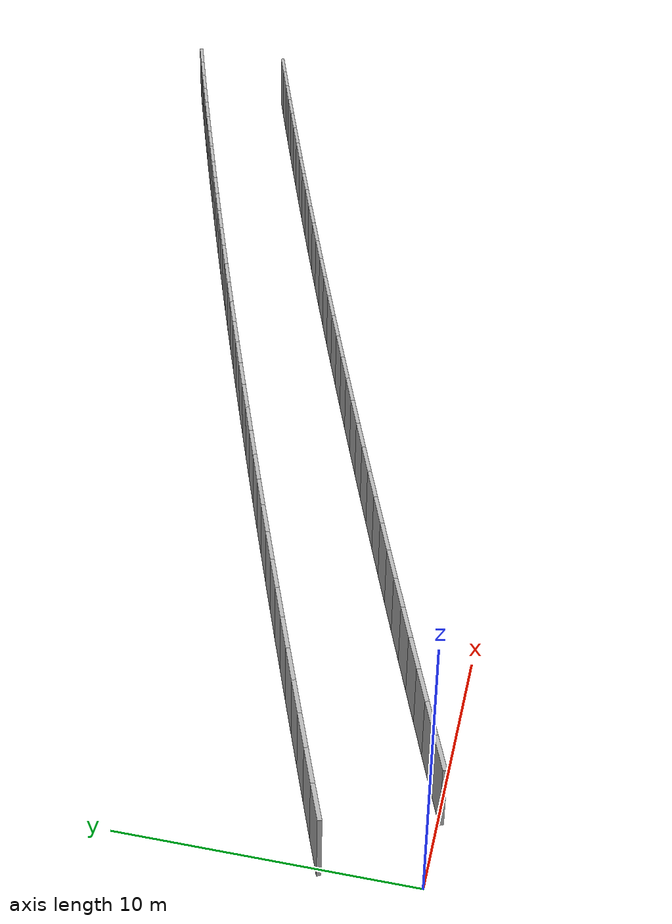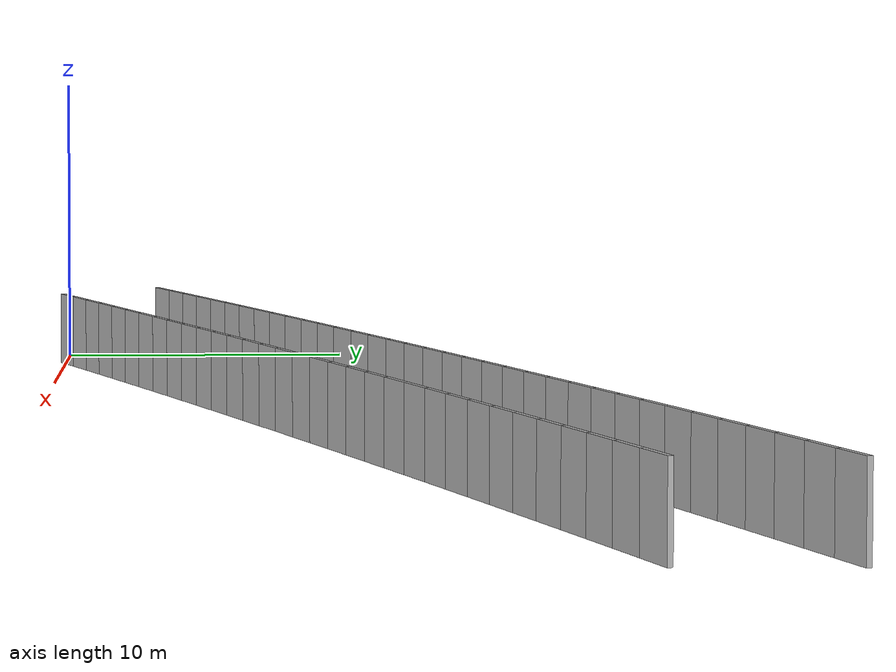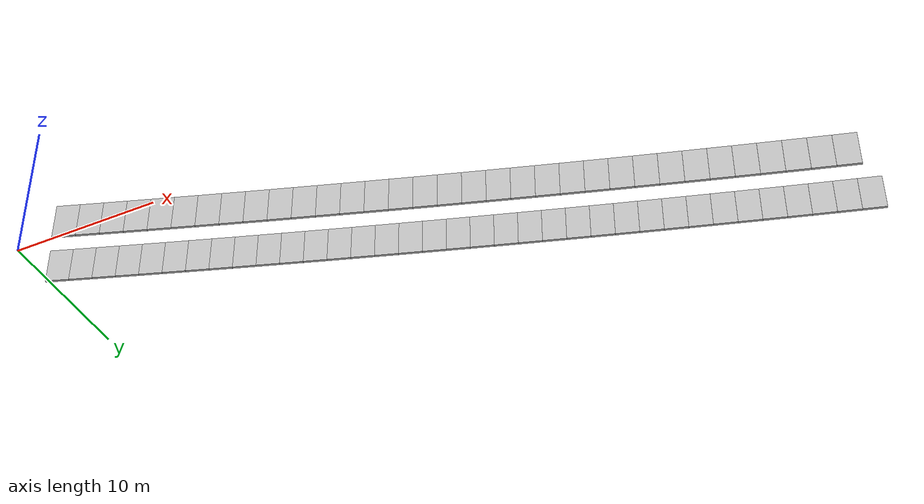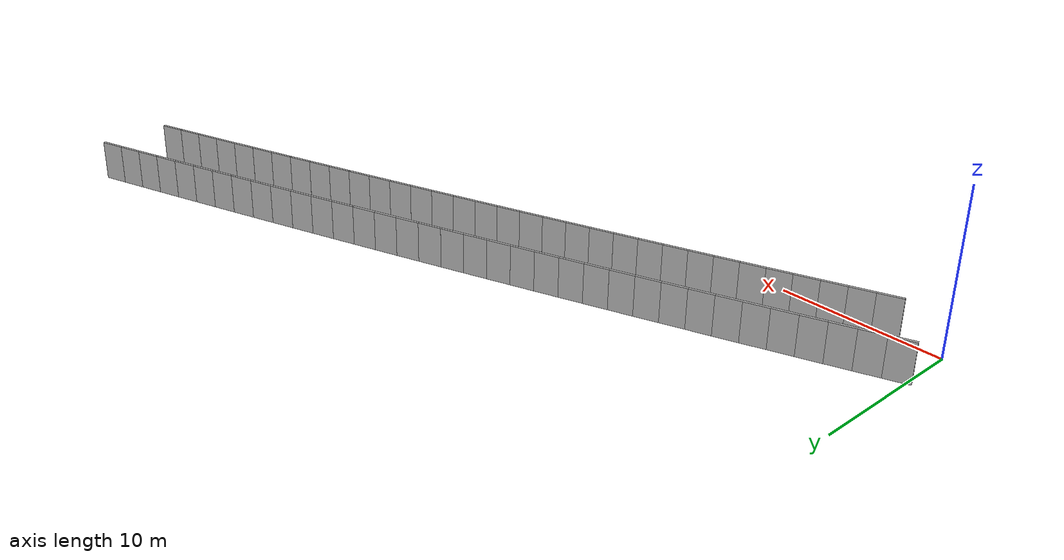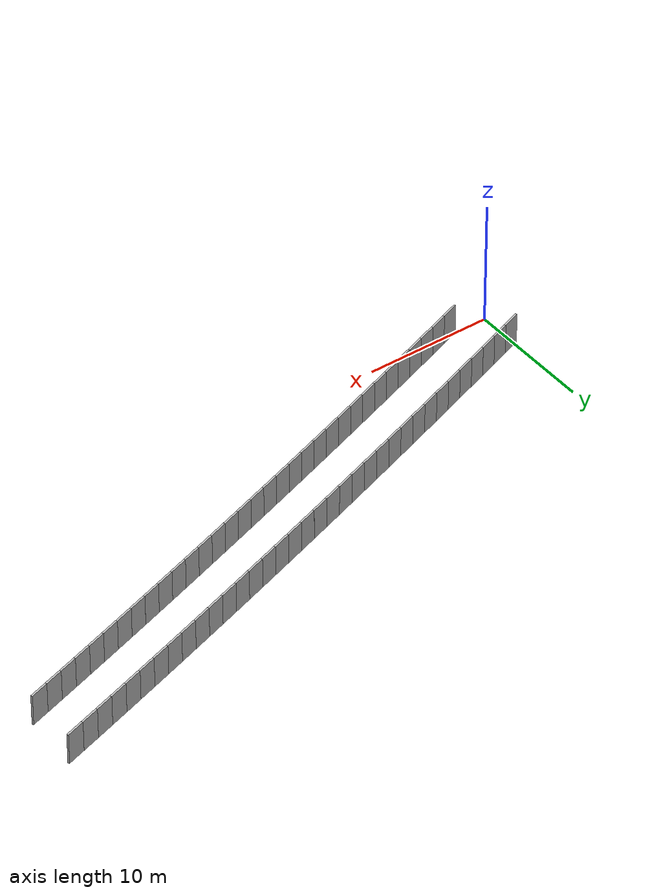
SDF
<?xml version="1.0" ?>
<sdf version="1.6">
  <model name="sps_1746">
    <pose frame="">0 0 0 0 -0 0</pose>
    <static>1</static>
    <self_collide>0</self_collide>
    <allow_auto_disable>0</allow_auto_disable>
    <link name="Wall3056">
      <kinematic>0</kinematic>
      <gravity>1</gravity>
      <self_collide>0</self_collide>
      <collision name="collision">
        <geometry>
          <box>
            <size>1.49633 0.15 2.5</size>
          </box>
        </geometry>
        <pose frame="">0 0 0 0 -0 0</pose>
      </collision>
      <visual name="visual">
        <geometry>
          <box>
            <size>1.49633 0.15 2.5</size>
          </box>
        </geometry>
        <pose frame="">0 0 0 0 -0 0</pose>
        <cast_shadows>1</cast_shadows>
        <transparency>0.0</transparency>
      </visual>
      <pose frame="">48.6327 15.6846 1.25 0 0 -2.83655</pose>
    </link>
    <link name="Wall3057">
      <kinematic>0</kinematic>
      <gravity>1</gravity>
      <self_collide>0</self_collide>
      <collision name="collision">
        <geometry>
          <box>
            <size>1.4966 0.15 2.5</size>
          </box>
        </geometry>
        <pose frame="">0 0 0 0 -0 0</pose>
      </collision>
      <visual name="visual">
        <geometry>
          <box>
            <size>1.4966 0.15 2.5</size>
          </box>
        </geometry>
        <pose frame="">0 0 0 0 -0 0</pose>
        <cast_shadows>1</cast_shadows>
        <transparency>0.0</transparency>
      </visual>
      <pose frame="">47.2056 15.234 1.25 0 0 -2.83489</pose>
    </link>
    <link name="Wall3058">
      <kinematic>0</kinematic>
      <gravity>1</gravity>
      <self_collide>0</self_collide>
      <collision name="collision">
        <geometry>
          <box>
            <size>1.4966 0.15 2.5</size>
          </box>
        </geometry>
        <pose frame="">0 0 0 0 -0 0</pose>
      </collision>
      <visual name="visual">
        <geometry>
          <box>
            <size>1.4966 0.15 2.5</size>
          </box>
        </geometry>
        <pose frame="">0 0 0 0 -0 0</pose>
        <cast_shadows>1</cast_shadows>
        <transparency>0.0</transparency>
      </visual>
      <pose frame="">45.7793 14.781 1.25 0 0 -2.83327</pose>
    </link>
    <link name="Wall3059">
      <kinematic>0</kinematic>
      <gravity>1</gravity>
      <self_collide>0</self_collide>
      <collision name="collision">
        <geometry>
          <box>
            <size>1.49642 0.15 2.5</size>
          </box>
        </geometry>
        <pose frame="">0 0 0 0 -0 0</pose>
      </collision>
      <visual name="visual">
        <geometry>
          <box>
            <size>1.49642 0.15 2.5</size>
          </box>
        </geometry>
        <pose frame="">0 0 0 0 -0 0</pose>
        <cast_shadows>1</cast_shadows>
        <transparency>0.0</transparency>
      </visual>
      <pose frame="">44.3537 14.3258 1.25 0 0 -2.83177</pose>
    </link>
    <link name="Wall3060">
      <kinematic>0</kinematic>
      <gravity>1</gravity>
      <self_collide>0</self_collide>
      <collision name="collision">
        <geometry>
          <box>
            <size>1.4966 0.15 2.5</size>
          </box>
        </geometry>
        <pose frame="">0 0 0 0 -0 0</pose>
      </collision>
      <visual name="visual">
        <geometry>
          <box>
            <size>1.4966 0.15 2.5</size>
          </box>
        </geometry>
        <pose frame="">0 0 0 0 -0 0</pose>
        <cast_shadows>1</cast_shadows>
        <transparency>0.0</transparency>
      </visual>
      <pose frame="">42.9288 13.8684 1.25 0 0 -2.83019</pose>
    </link>
    <link name="Wall3061">
      <kinematic>0</kinematic>
      <gravity>1</gravity>
      <self_collide>0</self_collide>
      <collision name="collision">
        <geometry>
          <box>
            <size>1.49654 0.15 2.5</size>
          </box>
        </geometry>
        <pose frame="">0 0 0 0 -0 0</pose>
      </collision>
      <visual name="visual">
        <geometry>
          <box>
            <size>1.49654 0.15 2.5</size>
          </box>
        </geometry>
        <pose frame="">0 0 0 0 -0 0</pose>
        <cast_shadows>1</cast_shadows>
        <transparency>0.0</transparency>
      </visual>
      <pose frame="">41.5046 13.4086 1.25 0 0 -2.82846</pose>
    </link>
    <link name="Wall3062">
      <kinematic>0</kinematic>
      <gravity>1</gravity>
      <self_collide>0</self_collide>
      <collision name="collision">
        <geometry>
          <box>
            <size>1.49647 0.15 2.5</size>
          </box>
        </geometry>
        <pose frame="">0 0 0 0 -0 0</pose>
      </collision>
      <visual name="visual">
        <geometry>
          <box>
            <size>1.49647 0.15 2.5</size>
          </box>
        </geometry>
        <pose frame="">0 0 0 0 -0 0</pose>
        <cast_shadows>1</cast_shadows>
        <transparency>0.0</transparency>
      </visual>
      <pose frame="">40.0812 12.9466 1.25 0 0 -2.82703</pose>
    </link>
    <link name="Wall3063">
      <kinematic>0</kinematic>
      <gravity>1</gravity>
      <self_collide>0</self_collide>
      <collision name="collision">
        <geometry>
          <box>
            <size>1.49639 0.15 2.5</size>
          </box>
        </geometry>
        <pose frame="">0 0 0 0 -0 0</pose>
      </collision>
      <visual name="visual">
        <geometry>
          <box>
            <size>1.49639 0.15 2.5</size>
          </box>
        </geometry>
        <pose frame="">0 0 0 0 -0 0</pose>
        <cast_shadows>1</cast_shadows>
        <transparency>0.0</transparency>
      </visual>
      <pose frame="">38.6586 12.4824 1.25 0 0 -2.82534</pose>
    </link>
    <link name="Wall3064">
      <kinematic>0</kinematic>
      <gravity>1</gravity>
      <self_collide>0</self_collide>
      <collision name="collision">
        <geometry>
          <box>
            <size>1.49663 0.15 2.5</size>
          </box>
        </geometry>
        <pose frame="">0 0 0 0 -0 0</pose>
      </collision>
      <visual name="visual">
        <geometry>
          <box>
            <size>1.49663 0.15 2.5</size>
          </box>
        </geometry>
        <pose frame="">0 0 0 0 -0 0</pose>
        <cast_shadows>1</cast_shadows>
        <transparency>0.0</transparency>
      </visual>
      <pose frame="">37.2367 12.0158 1.25 0 0 -2.82367</pose>
    </link>
    <link name="Wall3065">
      <kinematic>0</kinematic>
      <gravity>1</gravity>
      <self_collide>0</self_collide>
      <collision name="collision">
        <geometry>
          <box>
            <size>1.49643 0.15 2.5</size>
          </box>
        </geometry>
        <pose frame="">0 0 0 0 -0 0</pose>
      </collision>
      <visual name="visual">
        <geometry>
          <box>
            <size>1.49643 0.15 2.5</size>
          </box>
        </geometry>
        <pose frame="">0 0 0 0 -0 0</pose>
        <cast_shadows>1</cast_shadows>
        <transparency>0.0</transparency>
      </visual>
      <pose frame="">35.8155 11.547 1.25 0 0 -2.82225</pose>
    </link>
    <link name="Wall3066">
      <kinematic>0</kinematic>
      <gravity>1</gravity>
      <self_collide>0</self_collide>
      <collision name="collision">
        <geometry>
          <box>
            <size>1.49666 0.15 2.5</size>
          </box>
        </geometry>
        <pose frame="">0 0 0 0 -0 0</pose>
      </collision>
      <visual name="visual">
        <geometry>
          <box>
            <size>1.49666 0.15 2.5</size>
          </box>
        </geometry>
        <pose frame="">0 0 0 0 -0 0</pose>
        <cast_shadows>1</cast_shadows>
        <transparency>0.0</transparency>
      </visual>
      <pose frame="">34.395 11.076 1.25 0 0 -2.82063</pose>
    </link>
    <link name="Wall3067">
      <kinematic>0</kinematic>
      <gravity>1</gravity>
      <self_collide>0</self_collide>
      <collision name="collision">
        <geometry>
          <box>
            <size>1.49633 0.15 2.5</size>
          </box>
        </geometry>
        <pose frame="">0 0 0 0 -0 0</pose>
      </collision>
      <visual name="visual">
        <geometry>
          <box>
            <size>1.49633 0.15 2.5</size>
          </box>
        </geometry>
        <pose frame="">0 0 0 0 -0 0</pose>
        <cast_shadows>1</cast_shadows>
        <transparency>0.0</transparency>
      </visual>
      <pose frame="">32.9752 10.6028 1.25 0 0 -2.81909</pose>
    </link>
    <link name="Wall3068">
      <kinematic>0</kinematic>
      <gravity>1</gravity>
      <self_collide>0</self_collide>
      <collision name="collision">
        <geometry>
          <box>
            <size>1.49649 0.15 2.5</size>
          </box>
        </geometry>
        <pose frame="">0 0 0 0 -0 0</pose>
      </collision>
      <visual name="visual">
        <geometry>
          <box>
            <size>1.49649 0.15 2.5</size>
          </box>
        </geometry>
        <pose frame="">0 0 0 0 -0 0</pose>
        <cast_shadows>1</cast_shadows>
        <transparency>0.0</transparency>
      </visual>
      <pose frame="">31.5564 10.1274 1.25 0 0 -2.81749</pose>
    </link>
    <link name="Wall3069">
      <kinematic>0</kinematic>
      <gravity>1</gravity>
      <self_collide>0</self_collide>
      <collision name="collision">
        <geometry>
          <box>
            <size>1.4964 0.15 2.5</size>
          </box>
        </geometry>
        <pose frame="">0 0 0 0 -0 0</pose>
      </collision>
      <visual name="visual">
        <geometry>
          <box>
            <size>1.4964 0.15 2.5</size>
          </box>
        </geometry>
        <pose frame="">0 0 0 0 -0 0</pose>
        <cast_shadows>1</cast_shadows>
        <transparency>0.0</transparency>
      </visual>
      <pose frame="">30.1382 9.64979 1.25 0 0 -2.81601</pose>
    </link>
    <link name="Wall3070">
      <kinematic>0</kinematic>
      <gravity>1</gravity>
      <self_collide>0</self_collide>
      <collision name="collision">
        <geometry>
          <box>
            <size>1.49645 0.15 2.5</size>
          </box>
        </geometry>
        <pose frame="">0 0 0 0 -0 0</pose>
      </collision>
      <visual name="visual">
        <geometry>
          <box>
            <size>1.49645 0.15 2.5</size>
          </box>
        </geometry>
        <pose frame="">0 0 0 0 -0 0</pose>
        <cast_shadows>1</cast_shadows>
        <transparency>0.0</transparency>
      </visual>
      <pose frame="">28.7208 9.17 1.25 0 0 -2.81439</pose>
    </link>
    <link name="Wall3071">
      <kinematic>0</kinematic>
      <gravity>1</gravity>
      <self_collide>0</self_collide>
      <collision name="collision">
        <geometry>
          <box>
            <size>1.49643 0.15 2.5</size>
          </box>
        </geometry>
        <pose frame="">0 0 0 0 -0 0</pose>
      </collision>
      <visual name="visual">
        <geometry>
          <box>
            <size>1.49643 0.15 2.5</size>
          </box>
        </geometry>
        <pose frame="">0 0 0 0 -0 0</pose>
        <cast_shadows>1</cast_shadows>
        <transparency>0.0</transparency>
      </visual>
      <pose frame="">27.3041 8.68782 1.25 0 0 -2.81266</pose>
    </link>
    <link name="Wall3072">
      <kinematic>0</kinematic>
      <gravity>1</gravity>
      <self_collide>0</self_collide>
      <collision name="collision">
        <geometry>
          <box>
            <size>1.49664 0.15 2.5</size>
          </box>
        </geometry>
        <pose frame="">0 0 0 0 -0 0</pose>
      </collision>
      <visual name="visual">
        <geometry>
          <box>
            <size>1.49664 0.15 2.5</size>
          </box>
        </geometry>
        <pose frame="">0 0 0 0 -0 0</pose>
        <cast_shadows>1</cast_shadows>
        <transparency>0.0</transparency>
      </visual>
      <pose frame="">25.8882 8.2032 1.25 0 0 -2.81098</pose>
    </link>
    <link name="Wall3073">
      <kinematic>0</kinematic>
      <gravity>1</gravity>
      <self_collide>0</self_collide>
      <collision name="collision">
        <geometry>
          <box>
            <size>1.49652 0.15 2.5</size>
          </box>
        </geometry>
        <pose frame="">0 0 0 0 -0 0</pose>
      </collision>
      <visual name="visual">
        <geometry>
          <box>
            <size>1.49652 0.15 2.5</size>
          </box>
        </geometry>
        <pose frame="">0 0 0 0 -0 0</pose>
        <cast_shadows>1</cast_shadows>
        <transparency>0.0</transparency>
      </visual>
      <pose frame="">24.473 7.71638 1.25 0 0 -2.80958</pose>
    </link>
    <link name="Wall3074">
      <kinematic>0</kinematic>
      <gravity>1</gravity>
      <self_collide>0</self_collide>
      <collision name="collision">
        <geometry>
          <box>
            <size>1.49655 0.15 2.5</size>
          </box>
        </geometry>
        <pose frame="">0 0 0 0 -0 0</pose>
      </collision>
      <visual name="visual">
        <geometry>
          <box>
            <size>1.49655 0.15 2.5</size>
          </box>
        </geometry>
        <pose frame="">0 0 0 0 -0 0</pose>
        <cast_shadows>1</cast_shadows>
        <transparency>0.0</transparency>
      </visual>
      <pose frame="">23.0586 7.2274 1.25 0 0 -2.8079</pose>
    </link>
    <link name="Wall3075">
      <kinematic>0</kinematic>
      <gravity>1</gravity>
      <self_collide>0</self_collide>
      <collision name="collision">
        <geometry>
          <box>
            <size>1.49648 0.15 2.5</size>
          </box>
        </geometry>
        <pose frame="">0 0 0 0 -0 0</pose>
      </collision>
      <visual name="visual">
        <geometry>
          <box>
            <size>1.49648 0.15 2.5</size>
          </box>
        </geometry>
        <pose frame="">0 0 0 0 -0 0</pose>
        <cast_shadows>1</cast_shadows>
        <transparency>0.0</transparency>
      </visual>
      <pose frame="">21.645 6.73619 1.25 0 0 -2.80642</pose>
    </link>
    <link name="Wall3076">
      <kinematic>0</kinematic>
      <gravity>1</gravity>
      <self_collide>0</self_collide>
      <collision name="collision">
        <geometry>
          <box>
            <size>1.49644 0.15 2.5</size>
          </box>
        </geometry>
        <pose frame="">0 0 0 0 -0 0</pose>
      </collision>
      <visual name="visual">
        <geometry>
          <box>
            <size>1.49644 0.15 2.5</size>
          </box>
        </geometry>
        <pose frame="">0 0 0 0 -0 0</pose>
        <cast_shadows>1</cast_shadows>
        <transparency>0.0</transparency>
      </visual>
      <pose frame="">20.2323 6.24278 1.25 0 0 -2.80476</pose>
    </link>
    <link name="Wall3077">
      <kinematic>0</kinematic>
      <gravity>1</gravity>
      <self_collide>0</self_collide>
      <collision name="collision">
        <geometry>
          <box>
            <size>1.4965 0.15 2.5</size>
          </box>
        </geometry>
        <pose frame="">0 0 0 0 -0 0</pose>
      </collision>
      <visual name="visual">
        <geometry>
          <box>
            <size>1.4965 0.15 2.5</size>
          </box>
        </geometry>
        <pose frame="">0 0 0 0 -0 0</pose>
        <cast_shadows>1</cast_shadows>
        <transparency>0.0</transparency>
      </visual>
      <pose frame="">18.8203 5.74708 1.25 0 0 -2.80318</pose>
    </link>
    <link name="Wall3078">
      <kinematic>0</kinematic>
      <gravity>1</gravity>
      <self_collide>0</self_collide>
      <collision name="collision">
        <geometry>
          <box>
            <size>1.49646 0.15 2.5</size>
          </box>
        </geometry>
        <pose frame="">0 0 0 0 -0 0</pose>
      </collision>
      <visual name="visual">
        <geometry>
          <box>
            <size>1.49646 0.15 2.5</size>
          </box>
        </geometry>
        <pose frame="">0 0 0 0 -0 0</pose>
        <cast_shadows>1</cast_shadows>
        <transparency>0.0</transparency>
      </visual>
      <pose frame="">17.409 5.24919 1.25 0 0 -2.80166</pose>
    </link>
    <link name="Wall3079">
      <kinematic>0</kinematic>
      <gravity>1</gravity>
      <self_collide>0</self_collide>
      <collision name="collision">
        <geometry>
          <box>
            <size>1.49641 0.15 2.5</size>
          </box>
        </geometry>
        <pose frame="">0 0 0 0 -0 0</pose>
      </collision>
      <visual name="visual">
        <geometry>
          <box>
            <size>1.49641 0.15 2.5</size>
          </box>
        </geometry>
        <pose frame="">0 0 0 0 -0 0</pose>
        <cast_shadows>1</cast_shadows>
        <transparency>0.0</transparency>
      </visual>
      <pose frame="">15.9986 4.7491 1.25 0 0 -2.80004</pose>
    </link>
    <link name="Wall3080">
      <kinematic>0</kinematic>
      <gravity>1</gravity>
      <self_collide>0</self_collide>
      <collision name="collision">
        <geometry>
          <box>
            <size>1.49663 0.15 2.5</size>
          </box>
        </geometry>
        <pose frame="">0 0 0 0 -0 0</pose>
      </collision>
      <visual name="visual">
        <geometry>
          <box>
            <size>1.49663 0.15 2.5</size>
          </box>
        </geometry>
        <pose frame="">0 0 0 0 -0 0</pose>
        <cast_shadows>1</cast_shadows>
        <transparency>0.0</transparency>
      </visual>
      <pose frame="">14.589 4.24678 1.25 0 0 -2.79854</pose>
    </link>
    <link name="Wall3081">
      <kinematic>0</kinematic>
      <gravity>1</gravity>
      <self_collide>0</self_collide>
      <collision name="collision">
        <geometry>
          <box>
            <size>1.49646 0.15 2.5</size>
          </box>
        </geometry>
        <pose frame="">0 0 0 0 -0 0</pose>
      </collision>
      <visual name="visual">
        <geometry>
          <box>
            <size>1.49646 0.15 2.5</size>
          </box>
        </geometry>
        <pose frame="">0 0 0 0 -0 0</pose>
        <cast_shadows>1</cast_shadows>
        <transparency>0.0</transparency>
      </visual>
      <pose frame="">13.18 3.74217 1.25 0 0 -2.7968</pose>
    </link>
    <link name="Wall3082">
      <kinematic>0</kinematic>
      <gravity>1</gravity>
      <self_collide>0</self_collide>
      <collision name="collision">
        <geometry>
          <box>
            <size>1.49663 0.15 2.5</size>
          </box>
        </geometry>
        <pose frame="">0 0 0 0 -0 0</pose>
      </collision>
      <visual name="visual">
        <geometry>
          <box>
            <size>1.49663 0.15 2.5</size>
          </box>
        </geometry>
        <pose frame="">0 0 0 0 -0 0</pose>
        <cast_shadows>1</cast_shadows>
        <transparency>0.0</transparency>
      </visual>
      <pose frame="">11.772 3.23527 1.25 0 0 -2.79528</pose>
    </link>
    <link name="Wall3083">
      <kinematic>0</kinematic>
      <gravity>1</gravity>
      <self_collide>0</self_collide>
      <collision name="collision">
        <geometry>
          <box>
            <size>1.49646 0.15 2.5</size>
          </box>
        </geometry>
        <pose frame="">0 0 0 0 -0 0</pose>
      </collision>
      <visual name="visual">
        <geometry>
          <box>
            <size>1.49646 0.15 2.5</size>
          </box>
        </geometry>
        <pose frame="">0 0 0 0 -0 0</pose>
        <cast_shadows>1</cast_shadows>
        <transparency>0.0</transparency>
      </visual>
      <pose frame="">10.3647 2.72618 1.25 0 0 -2.79368</pose>
    </link>
    <link name="Wall3084">
      <kinematic>0</kinematic>
      <gravity>1</gravity>
      <self_collide>0</self_collide>
      <collision name="collision">
        <geometry>
          <box>
            <size>1.49646 0.15 2.5</size>
          </box>
        </geometry>
        <pose frame="">0 0 0 0 -0 0</pose>
      </collision>
      <visual name="visual">
        <geometry>
          <box>
            <size>1.49646 0.15 2.5</size>
          </box>
        </geometry>
        <pose frame="">0 0 0 0 -0 0</pose>
        <cast_shadows>1</cast_shadows>
        <transparency>0.0</transparency>
      </visual>
      <pose frame="">8.95827 2.21489 1.25 0 0 -2.79212</pose>
    </link>
    <link name="Wall3085">
      <kinematic>0</kinematic>
      <gravity>1</gravity>
      <self_collide>0</self_collide>
      <collision name="collision">
        <geometry>
          <box>
            <size>1.49647 0.15 2.5</size>
          </box>
        </geometry>
        <pose frame="">0 0 0 0 -0 0</pose>
      </collision>
      <visual name="visual">
        <geometry>
          <box>
            <size>1.49647 0.15 2.5</size>
          </box>
        </geometry>
        <pose frame="">0 0 0 0 -0 0</pose>
        <cast_shadows>1</cast_shadows>
        <transparency>0.0</transparency>
      </visual>
      <pose frame="">7.55267 1.7014 1.25 0 0 -2.79056</pose>
    </link>
    <link name="Wall3086">
      <kinematic>0</kinematic>
      <gravity>1</gravity>
      <self_collide>0</self_collide>
      <collision name="collision">
        <geometry>
          <box>
            <size>1.49648 0.15 2.5</size>
          </box>
        </geometry>
        <pose frame="">0 0 0 0 -0 0</pose>
      </collision>
      <visual name="visual">
        <geometry>
          <box>
            <size>1.49648 0.15 2.5</size>
          </box>
        </geometry>
        <pose frame="">0 0 0 0 -0 0</pose>
        <cast_shadows>1</cast_shadows>
        <transparency>0.0</transparency>
      </visual>
      <pose frame="">6.14785 1.18571 1.25 0 0 -2.789</pose>
    </link>
    <link name="Wall3087">
      <kinematic>0</kinematic>
      <gravity>1</gravity>
      <self_collide>0</self_collide>
      <collision name="collision">
        <geometry>
          <box>
            <size>1.49659 0.15 2.5</size>
          </box>
        </geometry>
        <pose frame="">0 0 0 0 -0 0</pose>
      </collision>
      <visual name="visual">
        <geometry>
          <box>
            <size>1.49659 0.15 2.5</size>
          </box>
        </geometry>
        <pose frame="">0 0 0 0 -0 0</pose>
        <cast_shadows>1</cast_shadows>
        <transparency>0.0</transparency>
      </visual>
      <pose frame="">4.74386 0.667617 1.25 0 0 -2.78716</pose>
    </link>
    <link name="Wall3088">
      <kinematic>0</kinematic>
      <gravity>1</gravity>
      <self_collide>0</self_collide>
      <collision name="collision">
        <geometry>
          <box>
            <size>1.49654 0.15 2.5</size>
          </box>
        </geometry>
        <pose frame="">0 0 0 0 -0 0</pose>
      </collision>
      <visual name="visual">
        <geometry>
          <box>
            <size>1.49654 0.15 2.5</size>
          </box>
        </geometry>
        <pose frame="">0 0 0 0 -0 0</pose>
        <cast_shadows>1</cast_shadows>
        <transparency>0.0</transparency>
      </visual>
      <pose frame="">3.34066 0.147292 1.25 0 0 -2.78584</pose>
    </link>
    <link name="Wall5666">
      <kinematic>0</kinematic>
      <gravity>1</gravity>
      <self_collide>0</self_collide>
      <collision name="collision">
        <geometry>
          <box>
            <size>1.50308 0.15 2.5</size>
          </box>
        </geometry>
        <pose frame="">0 0 0 0 -0 0</pose>
      </collision>
      <visual name="visual">
        <geometry>
          <box>
            <size>1.50308 0.15 2.5</size>
          </box>
        </geometry>
        <pose frame="">0 0 0 0 -0 0</pose>
        <cast_shadows>1</cast_shadows>
        <transparency>0.0</transparency>
      </visual>
      <pose frame="">48.8163 20.0813 1.25 0 0 -2.83809</pose>
    </link>
    <link name="Wall5667">
      <kinematic>0</kinematic>
      <gravity>1</gravity>
      <self_collide>0</self_collide>
      <collision name="collision">
        <geometry>
          <box>
            <size>1.50327 0.15 2.5</size>
          </box>
        </geometry>
        <pose frame="">0 0 0 0 -0 0</pose>
      </collision>
      <visual name="visual">
        <geometry>
          <box>
            <size>1.50327 0.15 2.5</size>
          </box>
        </geometry>
        <pose frame="">0 0 0 0 -0 0</pose>
        <cast_shadows>1</cast_shadows>
        <transparency>0.0</transparency>
      </visual>
      <pose frame="">47.3822 19.6309 1.25 0 0 -2.83647</pose>
    </link>
    <link name="Wall5668">
      <kinematic>0</kinematic>
      <gravity>1</gravity>
      <self_collide>0</self_collide>
      <collision name="collision">
        <geometry>
          <box>
            <size>1.50295 0.15 2.5</size>
          </box>
        </geometry>
        <pose frame="">0 0 0 0 -0 0</pose>
      </collision>
      <visual name="visual">
        <geometry>
          <box>
            <size>1.50295 0.15 2.5</size>
          </box>
        </geometry>
        <pose frame="">0 0 0 0 -0 0</pose>
        <cast_shadows>1</cast_shadows>
        <transparency>0.0</transparency>
      </visual>
      <pose frame="">45.9488 19.1782 1.25 0 0 -2.83487</pose>
    </link>
    <link name="Wall5669">
      <kinematic>0</kinematic>
      <gravity>1</gravity>
      <self_collide>0</self_collide>
      <collision name="collision">
        <geometry>
          <box>
            <size>1.50328 0.15 2.5</size>
          </box>
        </geometry>
        <pose frame="">0 0 0 0 -0 0</pose>
      </collision>
      <visual name="visual">
        <geometry>
          <box>
            <size>1.50328 0.15 2.5</size>
          </box>
        </geometry>
        <pose frame="">0 0 0 0 -0 0</pose>
        <cast_shadows>1</cast_shadows>
        <transparency>0.0</transparency>
      </visual>
      <pose frame="">44.5163 18.7232 1.25 0 0 -2.83323</pose>
    </link>
    <link name="Wall5670">
      <kinematic>0</kinematic>
      <gravity>1</gravity>
      <self_collide>0</self_collide>
      <collision name="collision">
        <geometry>
          <box>
            <size>1.50294 0.15 2.5</size>
          </box>
        </geometry>
        <pose frame="">0 0 0 0 -0 0</pose>
      </collision>
      <visual name="visual">
        <geometry>
          <box>
            <size>1.50294 0.15 2.5</size>
          </box>
        </geometry>
        <pose frame="">0 0 0 0 -0 0</pose>
        <cast_shadows>1</cast_shadows>
        <transparency>0.0</transparency>
      </visual>
      <pose frame="">43.0844 18.266 1.25 0 0 -2.8318</pose>
    </link>
    <link name="Wall5671">
      <kinematic>0</kinematic>
      <gravity>1</gravity>
      <self_collide>0</self_collide>
      <collision name="collision">
        <geometry>
          <box>
            <size>1.50322 0.15 2.5</size>
          </box>
        </geometry>
        <pose frame="">0 0 0 0 -0 0</pose>
      </collision>
      <visual name="visual">
        <geometry>
          <box>
            <size>1.50322 0.15 2.5</size>
          </box>
        </geometry>
        <pose frame="">0 0 0 0 -0 0</pose>
        <cast_shadows>1</cast_shadows>
        <transparency>0.0</transparency>
      </visual>
      <pose frame="">41.6533 17.8065 1.25 0 0 -2.83002</pose>
    </link>
    <link name="Wall5672">
      <kinematic>0</kinematic>
      <gravity>1</gravity>
      <self_collide>0</self_collide>
      <collision name="collision">
        <geometry>
          <box>
            <size>1.50301 0.15 2.5</size>
          </box>
        </geometry>
        <pose frame="">0 0 0 0 -0 0</pose>
      </collision>
      <visual name="visual">
        <geometry>
          <box>
            <size>1.50301 0.15 2.5</size>
          </box>
        </geometry>
        <pose frame="">0 0 0 0 -0 0</pose>
        <cast_shadows>1</cast_shadows>
        <transparency>0.0</transparency>
      </visual>
      <pose frame="">40.2228 17.3447 1.25 0 0 -2.82861</pose>
    </link>
    <link name="Wall5673">
      <kinematic>0</kinematic>
      <gravity>1</gravity>
      <self_collide>0</self_collide>
      <collision name="collision">
        <geometry>
          <box>
            <size>1.50295 0.15 2.5</size>
          </box>
        </geometry>
        <pose frame="">0 0 0 0 -0 0</pose>
      </collision>
      <visual name="visual">
        <geometry>
          <box>
            <size>1.50295 0.15 2.5</size>
          </box>
        </geometry>
        <pose frame="">0 0 0 0 -0 0</pose>
        <cast_shadows>1</cast_shadows>
        <transparency>0.0</transparency>
      </visual>
      <pose frame="">38.7932 16.8808 1.25 0 0 -2.82702</pose>
    </link>
    <link name="Wall5674">
      <kinematic>0</kinematic>
      <gravity>1</gravity>
      <self_collide>0</self_collide>
      <collision name="collision">
        <geometry>
          <box>
            <size>1.50317 0.15 2.5</size>
          </box>
        </geometry>
        <pose frame="">0 0 0 0 -0 0</pose>
      </collision>
      <visual name="visual">
        <geometry>
          <box>
            <size>1.50317 0.15 2.5</size>
          </box>
        </geometry>
        <pose frame="">0 0 0 0 -0 0</pose>
        <cast_shadows>1</cast_shadows>
        <transparency>0.0</transparency>
      </visual>
      <pose frame="">37.3643 16.4145 1.25 0 0 -2.82527</pose>
    </link>
    <link name="Wall5675">
      <kinematic>0</kinematic>
      <gravity>1</gravity>
      <self_collide>0</self_collide>
      <collision name="collision">
        <geometry>
          <box>
            <size>1.50304 0.15 2.5</size>
          </box>
        </geometry>
        <pose frame="">0 0 0 0 -0 0</pose>
      </collision>
      <visual name="visual">
        <geometry>
          <box>
            <size>1.50304 0.15 2.5</size>
          </box>
        </geometry>
        <pose frame="">0 0 0 0 -0 0</pose>
        <cast_shadows>1</cast_shadows>
        <transparency>0.0</transparency>
      </visual>
      <pose frame="">35.9361 15.9459 1.25 0 0 -2.82384</pose>
    </link>
    <link name="Wall5676">
      <kinematic>0</kinematic>
      <gravity>1</gravity>
      <self_collide>0</self_collide>
      <collision name="collision">
        <geometry>
          <box>
            <size>1.50321 0.15 2.5</size>
          </box>
        </geometry>
        <pose frame="">0 0 0 0 -0 0</pose>
      </collision>
      <visual name="visual">
        <geometry>
          <box>
            <size>1.50321 0.15 2.5</size>
          </box>
        </geometry>
        <pose frame="">0 0 0 0 -0 0</pose>
        <cast_shadows>1</cast_shadows>
        <transparency>0.0</transparency>
      </visual>
      <pose frame="">34.5087 15.4751 1.25 0 0 -2.8222</pose>
    </link>
    <link name="Wall5677">
      <kinematic>0</kinematic>
      <gravity>1</gravity>
      <self_collide>0</self_collide>
      <collision name="collision">
        <geometry>
          <box>
            <size>1.50297 0.15 2.5</size>
          </box>
        </geometry>
        <pose frame="">0 0 0 0 -0 0</pose>
      </collision>
      <visual name="visual">
        <geometry>
          <box>
            <size>1.50297 0.15 2.5</size>
          </box>
        </geometry>
        <pose frame="">0 0 0 0 -0 0</pose>
        <cast_shadows>1</cast_shadows>
        <transparency>0.0</transparency>
      </visual>
      <pose frame="">33.082 15.002 1.25 0 0 -2.82061</pose>
    </link>
    <link name="Wall5678">
      <kinematic>0</kinematic>
      <gravity>1</gravity>
      <self_collide>0</self_collide>
      <collision name="collision">
        <geometry>
          <box>
            <size>1.50311 0.15 2.5</size>
          </box>
        </geometry>
        <pose frame="">0 0 0 0 -0 0</pose>
      </collision>
      <visual name="visual">
        <geometry>
          <box>
            <size>1.50311 0.15 2.5</size>
          </box>
        </geometry>
        <pose frame="">0 0 0 0 -0 0</pose>
        <cast_shadows>1</cast_shadows>
        <transparency>0.0</transparency>
      </visual>
      <pose frame="">31.6561 14.5267 1.25 0 0 -2.81906</pose>
    </link>
    <link name="Wall5679">
      <kinematic>0</kinematic>
      <gravity>1</gravity>
      <self_collide>0</self_collide>
      <collision name="collision">
        <geometry>
          <box>
            <size>1.50297 0.15 2.5</size>
          </box>
        </geometry>
        <pose frame="">0 0 0 0 -0 0</pose>
      </collision>
      <visual name="visual">
        <geometry>
          <box>
            <size>1.50297 0.15 2.5</size>
          </box>
        </geometry>
        <pose frame="">0 0 0 0 -0 0</pose>
        <cast_shadows>1</cast_shadows>
        <transparency>0.0</transparency>
      </visual>
      <pose frame="">30.2309 14.0493 1.25 0 0 -2.81766</pose>
    </link>
    <link name="Wall5680">
      <kinematic>0</kinematic>
      <gravity>1</gravity>
      <self_collide>0</self_collide>
      <collision name="collision">
        <geometry>
          <box>
            <size>1.50304 0.15 2.5</size>
          </box>
        </geometry>
        <pose frame="">0 0 0 0 -0 0</pose>
      </collision>
      <visual name="visual">
        <geometry>
          <box>
            <size>1.50304 0.15 2.5</size>
          </box>
        </geometry>
        <pose frame="">0 0 0 0 -0 0</pose>
        <cast_shadows>1</cast_shadows>
        <transparency>0.0</transparency>
      </visual>
      <pose frame="">28.8064 13.5696 1.25 0 0 -2.81587</pose>
    </link>
    <link name="Wall5681">
      <kinematic>0</kinematic>
      <gravity>1</gravity>
      <self_collide>0</self_collide>
      <collision name="collision">
        <geometry>
          <box>
            <size>1.50324 0.15 2.5</size>
          </box>
        </geometry>
        <pose frame="">0 0 0 0 -0 0</pose>
      </collision>
      <visual name="visual">
        <geometry>
          <box>
            <size>1.50324 0.15 2.5</size>
          </box>
        </geometry>
        <pose frame="">0 0 0 0 -0 0</pose>
        <cast_shadows>1</cast_shadows>
        <transparency>0.0</transparency>
      </visual>
      <pose frame="">27.3827 13.0874 1.25 0 0 -2.81421</pose>
    </link>
    <link name="Wall5682">
      <kinematic>0</kinematic>
      <gravity>1</gravity>
      <self_collide>0</self_collide>
      <collision name="collision">
        <geometry>
          <box>
            <size>1.50291 0.15 2.5</size>
          </box>
        </geometry>
        <pose frame="">0 0 0 0 -0 0</pose>
      </collision>
      <visual name="visual">
        <geometry>
          <box>
            <size>1.50291 0.15 2.5</size>
          </box>
        </geometry>
        <pose frame="">0 0 0 0 -0 0</pose>
        <cast_shadows>1</cast_shadows>
        <transparency>0.0</transparency>
      </visual>
      <pose frame="">25.9599 12.603 1.25 0 0 -2.81271</pose>
    </link>
    <link name="Wall5683">
      <kinematic>0</kinematic>
      <gravity>1</gravity>
      <self_collide>0</self_collide>
      <collision name="collision">
        <geometry>
          <box>
            <size>1.50316 0.15 2.5</size>
          </box>
        </geometry>
        <pose frame="">0 0 0 0 -0 0</pose>
      </collision>
      <visual name="visual">
        <geometry>
          <box>
            <size>1.50316 0.15 2.5</size>
          </box>
        </geometry>
        <pose frame="">0 0 0 0 -0 0</pose>
        <cast_shadows>1</cast_shadows>
        <transparency>0.0</transparency>
      </visual>
      <pose frame="">24.5378 12.1164 1.25 0 0 -2.8111</pose>
    </link>
    <link name="Wall5684">
      <kinematic>0</kinematic>
      <gravity>1</gravity>
      <self_collide>0</self_collide>
      <collision name="collision">
        <geometry>
          <box>
            <size>1.50295 0.15 2.5</size>
          </box>
        </geometry>
        <pose frame="">0 0 0 0 -0 0</pose>
      </collision>
      <visual name="visual">
        <geometry>
          <box>
            <size>1.50295 0.15 2.5</size>
          </box>
        </geometry>
        <pose frame="">0 0 0 0 -0 0</pose>
        <cast_shadows>1</cast_shadows>
        <transparency>0.0</transparency>
      </visual>
      <pose frame="">23.1164 11.6275 1.25 0 0 -2.8095</pose>
    </link>
    <link name="Wall5685">
      <kinematic>0</kinematic>
      <gravity>1</gravity>
      <self_collide>0</self_collide>
      <collision name="collision">
        <geometry>
          <box>
            <size>1.50323 0.15 2.5</size>
          </box>
        </geometry>
        <pose frame="">0 0 0 0 -0 0</pose>
      </collision>
      <visual name="visual">
        <geometry>
          <box>
            <size>1.50323 0.15 2.5</size>
          </box>
        </geometry>
        <pose frame="">0 0 0 0 -0 0</pose>
        <cast_shadows>1</cast_shadows>
        <transparency>0.0</transparency>
      </visual>
      <pose frame="">21.6959 11.1364 1.25 0 0 -2.80798</pose>
    </link>
    <link name="Wall5686">
      <kinematic>0</kinematic>
      <gravity>1</gravity>
      <self_collide>0</self_collide>
      <collision name="collision">
        <geometry>
          <box>
            <size>1.50313 0.15 2.5</size>
          </box>
        </geometry>
        <pose frame="">0 0 0 0 -0 0</pose>
      </collision>
      <visual name="visual">
        <geometry>
          <box>
            <size>1.50313 0.15 2.5</size>
          </box>
        </geometry>
        <pose frame="">0 0 0 0 -0 0</pose>
        <cast_shadows>1</cast_shadows>
        <transparency>0.0</transparency>
      </visual>
      <pose frame="">20.276 10.643 1.25 0 0 -2.80632</pose>
    </link>
    <link name="Wall5687">
      <kinematic>0</kinematic>
      <gravity>1</gravity>
      <self_collide>0</self_collide>
      <collision name="collision">
        <geometry>
          <box>
            <size>1.50298 0.15 2.5</size>
          </box>
        </geometry>
        <pose frame="">0 0 0 0 -0 0</pose>
      </collision>
      <visual name="visual">
        <geometry>
          <box>
            <size>1.50298 0.15 2.5</size>
          </box>
        </geometry>
        <pose frame="">0 0 0 0 -0 0</pose>
        <cast_shadows>1</cast_shadows>
        <transparency>0.0</transparency>
      </visual>
      <pose frame="">18.857 10.1474 1.25 0 0 -2.80487</pose>
    </link>
    <link name="Wall5688">
      <kinematic>0</kinematic>
      <gravity>1</gravity>
      <self_collide>0</self_collide>
      <collision name="collision">
        <geometry>
          <box>
            <size>1.50304 0.15 2.5</size>
          </box>
        </geometry>
        <pose frame="">0 0 0 0 -0 0</pose>
      </collision>
      <visual name="visual">
        <geometry>
          <box>
            <size>1.50304 0.15 2.5</size>
          </box>
        </geometry>
        <pose frame="">0 0 0 0 -0 0</pose>
        <cast_shadows>1</cast_shadows>
        <transparency>0.0</transparency>
      </visual>
      <pose frame="">17.4388 9.64961 1.25 0 0 -2.80316</pose>
    </link>
    <link name="Wall5689">
      <kinematic>0</kinematic>
      <gravity>1</gravity>
      <self_collide>0</self_collide>
      <collision name="collision">
        <geometry>
          <box>
            <size>1.50326 0.15 2.5</size>
          </box>
        </geometry>
        <pose frame="">0 0 0 0 -0 0</pose>
      </collision>
      <visual name="visual">
        <geometry>
          <box>
            <size>1.50326 0.15 2.5</size>
          </box>
        </geometry>
        <pose frame="">0 0 0 0 -0 0</pose>
        <cast_shadows>1</cast_shadows>
        <transparency>0.0</transparency>
      </visual>
      <pose frame="">16.0213 9.14949 1.25 0 0 -2.80166</pose>
    </link>
    <link name="Wall5690">
      <kinematic>0</kinematic>
      <gravity>1</gravity>
      <self_collide>0</self_collide>
      <collision name="collision">
        <geometry>
          <box>
            <size>1.50307 0.15 2.5</size>
          </box>
        </geometry>
        <pose frame="">0 0 0 0 -0 0</pose>
      </collision>
      <visual name="visual">
        <geometry>
          <box>
            <size>1.50307 0.15 2.5</size>
          </box>
        </geometry>
        <pose frame="">0 0 0 0 -0 0</pose>
        <cast_shadows>1</cast_shadows>
        <transparency>0.0</transparency>
      </visual>
      <pose frame="">14.6045 8.64708 1.25 0 0 -2.79994</pose>
    </link>
    <link name="Wall5691">
      <kinematic>0</kinematic>
      <gravity>1</gravity>
      <self_collide>0</self_collide>
      <collision name="collision">
        <geometry>
          <box>
            <size>1.50306 0.15 2.5</size>
          </box>
        </geometry>
        <pose frame="">0 0 0 0 -0 0</pose>
      </collision>
      <visual name="visual">
        <geometry>
          <box>
            <size>1.50306 0.15 2.5</size>
          </box>
        </geometry>
        <pose frame="">0 0 0 0 -0 0</pose>
        <cast_shadows>1</cast_shadows>
        <transparency>0.0</transparency>
      </visual>
      <pose frame="">13.1887 8.14238 1.25 0 0 -2.79838</pose>
    </link>
    <link name="Wall5692">
      <kinematic>0</kinematic>
      <gravity>1</gravity>
      <self_collide>0</self_collide>
      <collision name="collision">
        <geometry>
          <box>
            <size>1.503 0.15 2.5</size>
          </box>
        </geometry>
        <pose frame="">0 0 0 0 -0 0</pose>
      </collision>
      <visual name="visual">
        <geometry>
          <box>
            <size>1.503 0.15 2.5</size>
          </box>
        </geometry>
        <pose frame="">0 0 0 0 -0 0</pose>
        <cast_shadows>1</cast_shadows>
        <transparency>0.0</transparency>
      </visual>
      <pose frame="">11.7737 7.63557 1.25 0 0 -2.79694</pose>
    </link>
    <link name="Wall5693">
      <kinematic>0</kinematic>
      <gravity>1</gravity>
      <self_collide>0</self_collide>
      <collision name="collision">
        <geometry>
          <box>
            <size>1.50323 0.15 2.5</size>
          </box>
        </geometry>
        <pose frame="">0 0 0 0 -0 0</pose>
      </collision>
      <visual name="visual">
        <geometry>
          <box>
            <size>1.50323 0.15 2.5</size>
          </box>
        </geometry>
        <pose frame="">0 0 0 0 -0 0</pose>
        <cast_shadows>1</cast_shadows>
        <transparency>0.0</transparency>
      </visual>
      <pose frame="">10.3594 7.12657 1.25 0 0 -2.79532</pose>
    </link>
    <link name="Wall5694">
      <kinematic>0</kinematic>
      <gravity>1</gravity>
      <self_collide>0</self_collide>
      <collision name="collision">
        <geometry>
          <box>
            <size>1.503 0.15 2.5</size>
          </box>
        </geometry>
        <pose frame="">0 0 0 0 -0 0</pose>
      </collision>
      <visual name="visual">
        <geometry>
          <box>
            <size>1.503 0.15 2.5</size>
          </box>
        </geometry>
        <pose frame="">0 0 0 0 -0 0</pose>
        <cast_shadows>1</cast_shadows>
        <transparency>0.0</transparency>
      </visual>
      <pose frame="">8.94595 6.61528 1.25 0 0 -2.79371</pose>
    </link>
    <link name="Wall5695">
      <kinematic>0</kinematic>
      <gravity>1</gravity>
      <self_collide>0</self_collide>
      <collision name="collision">
        <geometry>
          <box>
            <size>1.50306 0.15 2.5</size>
          </box>
        </geometry>
        <pose frame="">0 0 0 0 -0 0</pose>
      </collision>
      <visual name="visual">
        <geometry>
          <box>
            <size>1.50306 0.15 2.5</size>
          </box>
        </geometry>
        <pose frame="">0 0 0 0 -0 0</pose>
        <cast_shadows>1</cast_shadows>
        <transparency>0.0</transparency>
      </visual>
      <pose frame="">7.53335 6.10179 1.25 0 0 -2.79217</pose>
    </link>
    <link name="Wall5696">
      <kinematic>0</kinematic>
      <gravity>1</gravity>
      <self_collide>0</self_collide>
      <collision name="collision">
        <geometry>
          <box>
            <size>1.5031 0.15 2.5</size>
          </box>
        </geometry>
        <pose frame="">0 0 0 0 -0 0</pose>
      </collision>
      <visual name="visual">
        <geometry>
          <box>
            <size>1.5031 0.15 2.5</size>
          </box>
        </geometry>
        <pose frame="">0 0 0 0 -0 0</pose>
        <cast_shadows>1</cast_shadows>
        <transparency>0.0</transparency>
      </visual>
      <pose frame="">6.12154 5.58598 1.25 0 0 -2.79045</pose>
    </link>
    <link name="Wall5697">
      <kinematic>0</kinematic>
      <gravity>1</gravity>
      <self_collide>0</self_collide>
      <collision name="collision">
        <geometry>
          <box>
            <size>1.50303 0.15 2.5</size>
          </box>
        </geometry>
        <pose frame="">0 0 0 0 -0 0</pose>
      </collision>
      <visual name="visual">
        <geometry>
          <box>
            <size>1.50303 0.15 2.5</size>
          </box>
        </geometry>
        <pose frame="">0 0 0 0 -0 0</pose>
        <cast_shadows>1</cast_shadows>
        <transparency>0.0</transparency>
      </visual>
      <pose frame="">4.71056 5.06798 1.25 0 0 -2.78904</pose>
    </link>
    <link name="Wall5698">
      <kinematic>0</kinematic>
      <gravity>1</gravity>
      <self_collide>0</self_collide>
      <collision name="collision">
        <geometry>
          <box>
            <size>1.50313 0.15 2.5</size>
          </box>
        </geometry>
        <pose frame="">0 0 0 0 -0 0</pose>
      </collision>
      <visual name="visual">
        <geometry>
          <box>
            <size>1.50313 0.15 2.5</size>
          </box>
        </geometry>
        <pose frame="">0 0 0 0 -0 0</pose>
        <cast_shadows>1</cast_shadows>
        <transparency>0.0</transparency>
      </visual>
      <pose frame="">3.30038 4.54777 1.25 0 0 -2.78734</pose>
    </link>
    <link name="Wall5699">
      <kinematic>0</kinematic>
      <gravity>1</gravity>
      <self_collide>0</self_collide>
      <collision name="collision">
        <geometry>
          <box>
            <size>1.50313 0.15 2.5</size>
          </box>
        </geometry>
        <pose frame="">0 0 0 0 -0 0</pose>
      </collision>
      <visual name="visual">
        <geometry>
          <box>
            <size>1.50313 0.15 2.5</size>
          </box>
        </geometry>
        <pose frame="">0 0 0 0 -0 0</pose>
        <cast_shadows>1</cast_shadows>
        <transparency>0.0</transparency>
      </visual>
      <pose frame="">1.89098 4.02528 1.25 0 0 -2.78582</pose>
    </link>
    <link name="Wall5700">
      <kinematic>0</kinematic>
      <gravity>1</gravity>
      <self_collide>0</self_collide>
      <collision name="collision">
        <geometry>
          <box>
            <size>1.503 0.15 2.5</size>
          </box>
        </geometry>
        <pose frame="">0 0 0 0 -0 0</pose>
      </collision>
      <visual name="visual">
        <geometry>
          <box>
            <size>1.503 0.15 2.5</size>
          </box>
        </geometry>
        <pose frame="">0 0 0 0 -0 0</pose>
        <cast_shadows>1</cast_shadows>
        <transparency>0.0</transparency>
      </visual>
      <pose frame="">0.482475 3.50059 1.25 0 0 -2.78419</pose>
    </link>
  </model>
</sdf>
